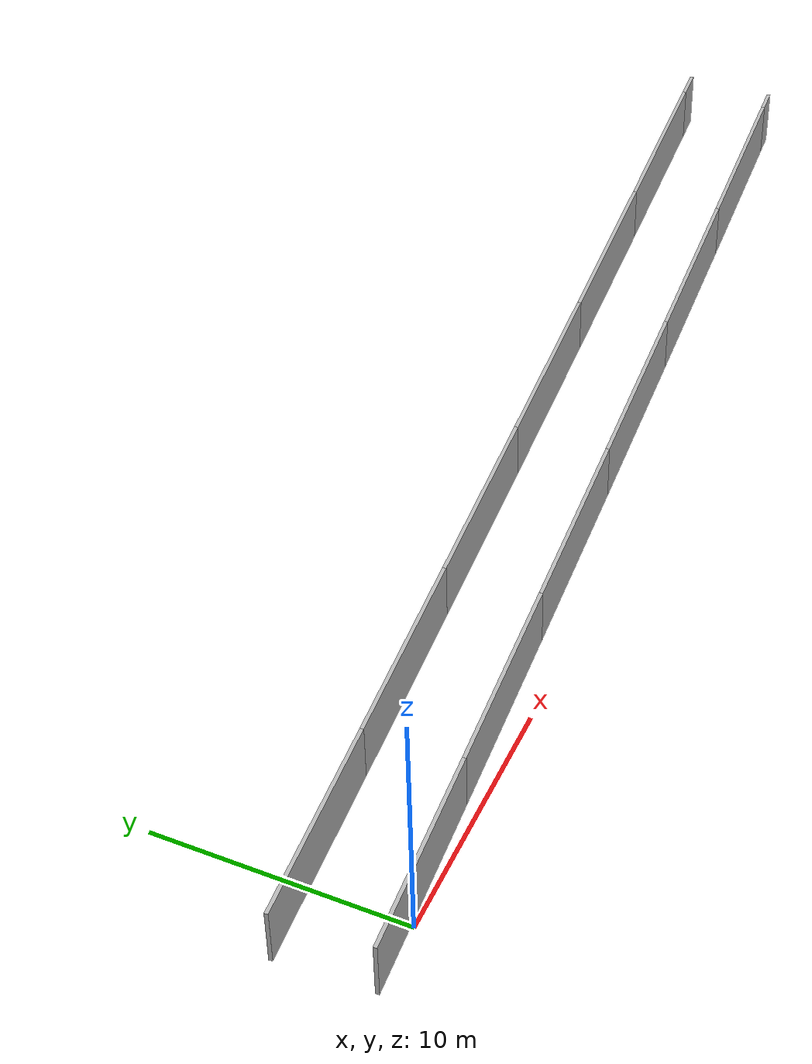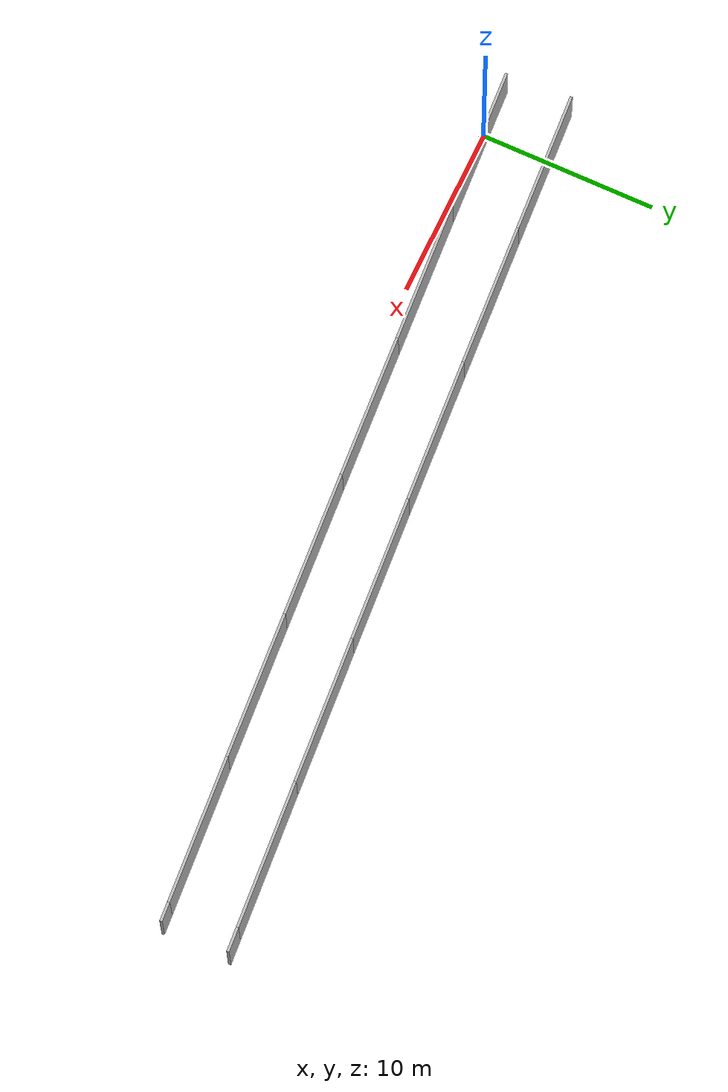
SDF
<?xml version="1.0" ?>
<sdf version="1.6">
  <model name="sps_4902">
    <pose frame="">0 0 0 0 -0 0</pose>
    <static>1</static>
    <self_collide>0</self_collide>
    <allow_auto_disable>0</allow_auto_disable>
    <link name="Wall8956">
      <kinematic>0</kinematic>
      <gravity>1</gravity>
      <self_collide>0</self_collide>
      <collision name="collision">
        <geometry>
          <box>
            <size>8.25148 0.15 2.5</size>
          </box>
        </geometry>
        <pose frame="">0 0 0 0 -0 0</pose>
      </collision>
      <visual name="visual">
        <geometry>
          <box>
            <size>8.25148 0.15 2.5</size>
          </box>
        </geometry>
        <pose frame="">0 0 0 0 -0 0</pose>
        <cast_shadows>1</cast_shadows>
        <transparency>0.0</transparency>
      </visual>
      <pose frame="">1.07574 4.0475 1.25 0 -0 0.0698092</pose>
    </link>
    <link name="Wall8957">
      <kinematic>0</kinematic>
      <gravity>1</gravity>
      <self_collide>0</self_collide>
      <collision name="collision">
        <geometry>
          <box>
            <size>8.2519 0.15 2.5</size>
          </box>
        </geometry>
        <pose frame="">0 0 0 0 -0 0</pose>
      </collision>
      <visual name="visual">
        <geometry>
          <box>
            <size>8.2519 0.15 2.5</size>
          </box>
        </geometry>
        <pose frame="">0 0 0 0 -0 0</pose>
        <cast_shadows>1</cast_shadows>
        <transparency>0.0</transparency>
      </visual>
      <pose frame="">9.30663 4.63289 1.25 0 -0 0.0721933</pose>
    </link>
    <link name="Wall8958">
      <kinematic>0</kinematic>
      <gravity>1</gravity>
      <self_collide>0</self_collide>
      <collision name="collision">
        <geometry>
          <box>
            <size>8.25174 0.15 2.5</size>
          </box>
        </geometry>
        <pose frame="">0 0 0 0 -0 0</pose>
      </collision>
      <visual name="visual">
        <geometry>
          <box>
            <size>8.25174 0.15 2.5</size>
          </box>
        </geometry>
        <pose frame="">0 0 0 0 -0 0</pose>
        <cast_shadows>1</cast_shadows>
        <transparency>0.0</transparency>
      </visual>
      <pose frame="">17.5362 5.23781 1.25 0 -0 0.0745532</pose>
    </link>
    <link name="Wall8959">
      <kinematic>0</kinematic>
      <gravity>1</gravity>
      <self_collide>0</self_collide>
      <collision name="collision">
        <geometry>
          <box>
            <size>8.25182 0.15 2.5</size>
          </box>
        </geometry>
        <pose frame="">0 0 0 0 -0 0</pose>
      </collision>
      <visual name="visual">
        <geometry>
          <box>
            <size>8.25182 0.15 2.5</size>
          </box>
        </geometry>
        <pose frame="">0 0 0 0 -0 0</pose>
        <cast_shadows>1</cast_shadows>
        <transparency>0.0</transparency>
      </visual>
      <pose frame="">25.7644 5.8622 1.25 0 -0 0.0769262</pose>
    </link>
    <link name="Wall8960">
      <kinematic>0</kinematic>
      <gravity>1</gravity>
      <self_collide>0</self_collide>
      <collision name="collision">
        <geometry>
          <box>
            <size>8.25188 0.15 2.5</size>
          </box>
        </geometry>
        <pose frame="">0 0 0 0 -0 0</pose>
      </collision>
      <visual name="visual">
        <geometry>
          <box>
            <size>8.25188 0.15 2.5</size>
          </box>
        </geometry>
        <pose frame="">0 0 0 0 -0 0</pose>
        <cast_shadows>1</cast_shadows>
        <transparency>0.0</transparency>
      </visual>
      <pose frame="">33.9911 6.50609 1.25 0 -0 0.0792923</pose>
    </link>
    <link name="Wall8961">
      <kinematic>0</kinematic>
      <gravity>1</gravity>
      <self_collide>0</self_collide>
      <collision name="collision">
        <geometry>
          <box>
            <size>8.25175 0.15 2.5</size>
          </box>
        </geometry>
        <pose frame="">0 0 0 0 -0 0</pose>
      </collision>
      <visual name="visual">
        <geometry>
          <box>
            <size>8.25175 0.15 2.5</size>
          </box>
        </geometry>
        <pose frame="">0 0 0 0 -0 0</pose>
        <cast_shadows>1</cast_shadows>
        <transparency>0.0</transparency>
      </visual>
      <pose frame="">42.2161 7.16951 1.25 0 -0 0.0816756</pose>
    </link>
    <link name="Wall8962">
      <kinematic>0</kinematic>
      <gravity>1</gravity>
      <self_collide>0</self_collide>
      <collision name="collision">
        <geometry>
          <box>
            <size>1.34815 0.15 2.5</size>
          </box>
        </geometry>
        <pose frame="">0 0 0 0 -0 0</pose>
      </collision>
      <visual name="visual">
        <geometry>
          <box>
            <size>1.34815 0.15 2.5</size>
          </box>
        </geometry>
        <pose frame="">0 0 0 0 -0 0</pose>
        <cast_shadows>1</cast_shadows>
        <transparency>0.0</transparency>
      </visual>
      <pose frame="">47 7.56268 1.25 0 -0 0.0840049</pose>
    </link>
    <link name="Wall9047">
      <kinematic>0</kinematic>
      <gravity>1</gravity>
      <self_collide>0</self_collide>
      <collision name="collision">
        <geometry>
          <box>
            <size>8.26171 0.15 2.5</size>
          </box>
        </geometry>
        <pose frame="">0 0 0 0 -0 0</pose>
      </collision>
      <visual name="visual">
        <geometry>
          <box>
            <size>8.26171 0.15 2.5</size>
          </box>
        </geometry>
        <pose frame="">0 0 0 0 -0 0</pose>
        <cast_shadows>1</cast_shadows>
        <transparency>0.0</transparency>
      </visual>
      <pose frame="">1.28884 0.296492 1.25 0 -0 0.0698189</pose>
    </link>
    <link name="Wall9048">
      <kinematic>0</kinematic>
      <gravity>1</gravity>
      <self_collide>0</self_collide>
      <collision name="collision">
        <geometry>
          <box>
            <size>8.26176 0.15 2.5</size>
          </box>
        </geometry>
        <pose frame="">0 0 0 0 -0 0</pose>
      </collision>
      <visual name="visual">
        <geometry>
          <box>
            <size>8.26176 0.15 2.5</size>
          </box>
        </geometry>
        <pose frame="">0 0 0 0 -0 0</pose>
        <cast_shadows>1</cast_shadows>
        <transparency>0.0</transparency>
      </visual>
      <pose frame="">9.52975 0.882674 1.25 0 -0 0.0722033</pose>
    </link>
    <link name="Wall9049">
      <kinematic>0</kinematic>
      <gravity>1</gravity>
      <self_collide>0</self_collide>
      <collision name="collision">
        <geometry>
          <box>
            <size>8.26171 0.15 2.5</size>
          </box>
        </geometry>
        <pose frame="">0 0 0 0 -0 0</pose>
      </collision>
      <visual name="visual">
        <geometry>
          <box>
            <size>8.26171 0.15 2.5</size>
          </box>
        </geometry>
        <pose frame="">0 0 0 0 -0 0</pose>
        <cast_shadows>1</cast_shadows>
        <transparency>0.0</transparency>
      </visual>
      <pose frame="">17.7692 1.4883 1.25 0 -0 0.0745372</pose>
    </link>
    <link name="Wall9050">
      <kinematic>0</kinematic>
      <gravity>1</gravity>
      <self_collide>0</self_collide>
      <collision name="collision">
        <geometry>
          <box>
            <size>8.26185 0.15 2.5</size>
          </box>
        </geometry>
        <pose frame="">0 0 0 0 -0 0</pose>
      </collision>
      <visual name="visual">
        <geometry>
          <box>
            <size>8.26185 0.15 2.5</size>
          </box>
        </geometry>
        <pose frame="">0 0 0 0 -0 0</pose>
        <cast_shadows>1</cast_shadows>
        <transparency>0.0</transparency>
      </visual>
      <pose frame="">26.0073 2.1133 1.25 0 -0 0.0769067</pose>
    </link>
    <link name="Wall9051">
      <kinematic>0</kinematic>
      <gravity>1</gravity>
      <self_collide>0</self_collide>
      <collision name="collision">
        <geometry>
          <box>
            <size>8.26174 0.15 2.5</size>
          </box>
        </geometry>
        <pose frame="">0 0 0 0 -0 0</pose>
      </collision>
      <visual name="visual">
        <geometry>
          <box>
            <size>8.26174 0.15 2.5</size>
          </box>
        </geometry>
        <pose frame="">0 0 0 0 -0 0</pose>
        <cast_shadows>1</cast_shadows>
        <transparency>0.0</transparency>
      </visual>
      <pose frame="">34.2439 2.75789 1.25 0 -0 0.0792939</pose>
    </link>
    <link name="Wall9052">
      <kinematic>0</kinematic>
      <gravity>1</gravity>
      <self_collide>0</self_collide>
      <collision name="collision">
        <geometry>
          <box>
            <size>8.26171 0.15 2.5</size>
          </box>
        </geometry>
        <pose frame="">0 0 0 0 -0 0</pose>
      </collision>
      <visual name="visual">
        <geometry>
          <box>
            <size>8.26171 0.15 2.5</size>
          </box>
        </geometry>
        <pose frame="">0 0 0 0 -0 0</pose>
        <cast_shadows>1</cast_shadows>
        <transparency>0.0</transparency>
      </visual>
      <pose frame="">42.4789 3.42198 1.25 0 -0 0.0816436</pose>
    </link>
    <link name="Wall9053">
      <kinematic>0</kinematic>
      <gravity>1</gravity>
      <self_collide>0</self_collide>
      <collision name="collision">
        <geometry>
          <box>
            <size>1.07944 0.15 2.5</size>
          </box>
        </geometry>
        <pose frame="">0 0 0 0 -0 0</pose>
      </collision>
      <visual name="visual">
        <geometry>
          <box>
            <size>1.07944 0.15 2.5</size>
          </box>
        </geometry>
        <pose frame="">0 0 0 0 -0 0</pose>
        <cast_shadows>1</cast_shadows>
        <transparency>0.0</transparency>
      </visual>
      <pose frame="">47.1338 3.80415 1.25 0 -0 0.0840081</pose>
    </link>
  </model>
</sdf>
